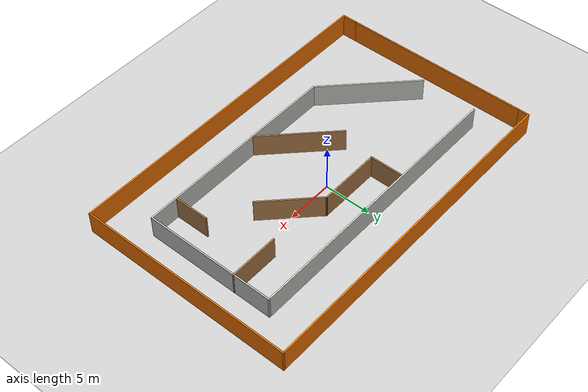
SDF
<sdf version="1.7">
 <world name="default">
  <light name="sun" type="directional">
   <pose>0 0 10 0 -0 0</pose>
   <diffuse>0.8 0.8 0.8 1</diffuse>
   <specular>0.2 0.2 0.2 1</specular>
   <attenuation>
    <range>1000</range>
    <constant>0.9</constant>
    <linear>0.01</linear>
    <quadratic>0.001</quadratic>
   </attenuation>
   <direction>-0.5 0.1 -0.9</direction>
   <spot><inner_angle>0</inner_angle><outer_angle>0</outer_angle><falloff>0</falloff></spot>
  </light>
  <model name="ground_plane">
   <static>1</static>
   <link name="link">
    <collision name="collision">
     <geometry><plane><normal>0 0 1</normal><size>100 100</size></plane></geometry>
     <surface><friction><ode><mu>100</mu><mu2>50</mu2></ode></friction></surface>
    </collision>
    <visual name="visual">
     <cast_shadows>0</cast_shadows>
     <geometry><plane><normal>0 0 1</normal><size>100 100</size></plane></geometry>
     <material>
      <script><uri>file://media/materials/scripts/gazebo.material</uri><name>Gazebo/Grey</name></script>
     </material>
    </visual>
   </link>
  </model>
  <gravity>0 0 -9.8</gravity>
  <magnetic_field>6e-06 2.3e-05 -4.2e-05</magnetic_field>
  <atmosphere type="adiabatic"/>
  <physics type="ode">
   <max_step_size>0.001</max_step_size>
   <real_time_factor>1</real_time_factor>
   <real_time_update_rate>1000</real_time_update_rate>
  </physics>
  <scene><ambient>0.4 0.4 0.4 1</ambient><background>0.7 0.7 0.7 1</background><shadows>1</shadows></scene>
  <audio><device>default</device></audio>
  <spherical_coordinates>
   <surface_model>EARTH_WGS84</surface_model>
   <latitude_deg>0</latitude_deg>
   <longitude_deg>0</longitude_deg>
   <elevation>0</elevation>
   <heading_deg>0</heading_deg>
  </spherical_coordinates>
  <model name="mbot_maze">
   <pose>-0.081357 -1.20883 0 0 -0 0</pose>
   <link name="Wall_1">
    <collision name="Wall_1_Collision">
     <geometry><box><size>22.25 0.15 2.5</size></box></geometry>
     <pose>0 0 1.25 0 -0 0</pose>
    </collision>
    <visual name="Wall_1_Visual">
     <pose>0 0 1.25 0 -0 0</pose>
     <geometry><box><size>22.25 0.15 2.5</size></box></geometry>
     <material>
      <script><uri>file://media/materials/scripts/gazebo.material</uri><name>Gazebo/CeilingTiled</name></script>
      <ambient>1 1 1 1</ambient>
     </material>
     <meta><layer>0</layer></meta>
    </visual>
    <pose>3.53639 -6.85154 0 0 -0 0</pose>
   </link>
   <link name="Wall_10">
    <collision name="Wall_10_Collision">
     <geometry><box><size>5.25 0.15 2.5</size></box></geometry>
     <pose>0 0 1.25 0 -0 0</pose>
    </collision>
    <visual name="Wall_10_Visual">
     <pose>0 0 1.25 0 -0 0</pose>
     <geometry><box><size>5.25 0.15 2.5</size></box></geometry>
     <material>
      <script><uri>file://media/materials/scripts/gazebo.material</uri><name>Gazebo/Wood</name></script>
      <ambient>1 1 1 1</ambient>
     </material>
     <meta><layer>0</layer></meta>
    </visual>
    <pose>12.0502 2.99293 0 0 -0 0</pose>
   </link>
   <link name="Wall_12">
    <collision name="Wall_12_Collision">
     <geometry><box><size>9 0.15 2.5</size></box></geometry>
     <pose>0 0 1.25 0 -0 0</pose>
    </collision>
    <visual name="Wall_12_Visual">
     <pose>0 0 1.25 0 -0 0</pose>
     <geometry><box><size>9 0.15 2.5</size></box></geometry>
     <material>
      <script><uri>file://media/materials/scripts/gazebo.material</uri><name>Gazebo/Wood</name></script>
      <ambient>1 1 1 1</ambient>
     </material>
     <meta><layer>0</layer></meta>
    </visual>
    <pose>-1.68408 -3.73221 0 0 -0 2.35619</pose>
   </link>
   <link name="Wall_14">
    <collision name="Wall_14_Collision">
     <geometry><box><size>3.75 0.15 2.5</size></box></geometry>
     <pose>0 0 1.25 0 -0 0</pose>
    </collision>
    <visual name="Wall_14_Visual">
     <pose>0 0 1.25 0 -0 0</pose>
     <geometry><box><size>3.75 0.15 2.5</size></box></geometry>
     <material>
      <script><uri>file://media/materials/scripts/gazebo.material</uri><name>Gazebo/Wood</name></script>
      <ambient>1 1 1 1</ambient>
     </material>
     <meta><layer>0</layer></meta>
    </visual>
    <pose>11.5568 -4.96948 0 0 -0 -1.5708</pose>
   </link>
   <link name="Wall_16">
    <collision name="Wall_16_Collision">
     <geometry><box><size>11 0.15 2.5</size></box></geometry>
     <pose>0 0 1.25 0 -0 0</pose>
    </collision>
    <visual name="Wall_16_Visual">
     <pose>0 0 1.25 0 -0 0</pose>
     <geometry><box><size>11 0.15 2.5</size></box></geometry>
     <material>
      <script><uri>file://media/materials/scripts/gazebo.material</uri><name>Gazebo/CeilingTiled</name></script>
      <ambient>1 1 1 1</ambient>
     </material>
     <meta><layer>0</layer></meta>
    </visual>
    <pose>-11.3497 -3.01548 0 0 -0 2.35619</pose>
   </link>
   <link name="Wall_18">
    <collision name="Wall_18_Collision">
     <geometry><box><size>20.25 0.15 2.5</size></box></geometry>
     <pose>0 0 1.25 0 -0 0</pose>
    </collision>
    <visual name="Wall_18_Visual">
     <pose>0 0 1.25 0 -0 0</pose>
     <geometry><box><size>20.25 0.15 2.5</size></box></geometry>
     <material>
      <script><uri>file://media/materials/scripts/gazebo.material</uri><name>Gazebo/Grey</name></script>
      <ambient>0.996078 0.47451 0.0196078 1</ambient>
     </material>
     <meta><layer>0</layer></meta>
    </visual>
    <pose>-17.8 0.225 0 0 -0 -1.5708</pose>
   </link>
   <link name="Wall_19">
    <collision name="Wall_19_Collision">
     <geometry><box><size>1.75 0.15 2.5</size></box></geometry>
     <pose>0 0 1.25 0 -0 0</pose>
    </collision>
    <visual name="Wall_19_Visual">
     <pose>0 0 1.25 0 -0 0</pose>
     <geometry><box><size>1.75 0.15 2.5</size></box></geometry>
     <material>
      <script><uri>file://media/materials/scripts/gazebo.material</uri><name>Gazebo/Grey</name></script>
      <ambient>0.996078 0.47451 0.0196078 1</ambient>
     </material>
     <meta><layer>0</layer></meta>
    </visual>
    <pose>-17.8 -10.625 0 0 -0 -1.5708</pose>
   </link>
   <link name="Wall_2">
    <collision name="Wall_2_Collision">
     <geometry><box><size>14 0.15 2.5</size></box></geometry>
     <pose>0 0 1.25 0 -0 0</pose>
    </collision>
    <visual name="Wall_2_Visual">
     <pose>0 0 1.25 0 -0 0</pose>
     <geometry><box><size>14 0.15 2.5</size></box></geometry>
     <material>
      <script><uri>file://media/materials/scripts/gazebo.material</uri><name>Gazebo/CeilingTiled</name></script>
      <ambient>1 1 1 1</ambient>
     </material>
     <meta><layer>0</layer></meta>
    </visual>
    <pose>14.5864 0.073464 0 0 -0 1.5708</pose>
   </link>
   <link name="Wall_20">
    <collision name="Wall_20_Collision">
     <geometry><box><size>35.75 0.15 2.5</size></box></geometry>
     <pose>0 0 1.25 0 -0 0</pose>
    </collision>
    <visual name="Wall_20_Visual">
     <pose>0 0 1.25 0 -0 0</pose>
     <geometry><box><size>35.75 0.15 2.5</size></box></geometry>
     <material>
      <script><uri>file://media/materials/scripts/gazebo.material</uri><name>Gazebo/Grey</name></script>
      <ambient>0.996078 0.47451 0.0196078 1</ambient>
     </material>
     <meta><layer>0</layer></meta>
    </visual>
    <pose>-0 -11.425 0 0 -0 0</pose>
   </link>
   <link name="Wall_21">
    <collision name="Wall_21_Collision">
     <geometry><box><size>23 0.15 2.5</size></box></geometry>
     <pose>0 0 1.25 0 -0 0</pose>
    </collision>
    <visual name="Wall_21_Visual">
     <pose>0 0 1.25 0 -0 0</pose>
     <geometry><box><size>23 0.15 2.5</size></box></geometry>
     <material>
      <script><uri>file://media/materials/scripts/gazebo.material</uri><name>Gazebo/Grey</name></script>
      <ambient>0.996078 0.47451 0.0196078 1</ambient>
     </material>
     <meta><layer>0</layer></meta>
    </visual>
    <pose>17.8 0 0 0 -0 1.5708</pose>
   </link>
   <link name="Wall_22">
    <collision name="Wall_22_Collision">
     <geometry><box><size>35.75 0.15 2.5</size></box></geometry>
     <pose>0 0 1.25 0 -0 0</pose>
    </collision>
    <visual name="Wall_22_Visual">
     <pose>0 0 1.25 0 -0 0</pose>
     <geometry><box><size>35.75 0.15 2.5</size></box></geometry>
     <material>
      <script><uri>file://media/materials/scripts/gazebo.material</uri><name>Gazebo/Grey</name></script>
      <ambient>0.996078 0.47451 0.0196078 1</ambient>
     </material>
     <meta><layer>0</layer></meta>
    </visual>
    <pose>-0 11.425 0 0 -0 3.14159</pose>
   </link>
   <link name="Wall_23">
    <collision name="Wall_23_Collision">
     <geometry><box><size>1.3 0.15 2.5</size></box></geometry>
     <pose>0 0 1.25 0 -0 0</pose>
    </collision>
    <visual name="Wall_23_Visual">
     <pose>0 0 1.25 0 -0 0</pose>
     <geometry><box><size>1.3 0.15 2.5</size></box></geometry>
     <material>
      <script><uri>file://media/materials/scripts/gazebo.material</uri><name>Gazebo/Grey</name></script>
      <ambient>0.996078 0.47451 0.0196078 1</ambient>
     </material>
     <meta><layer>0</layer></meta>
    </visual>
    <pose>-17.8 10.85 0 0 -0 -1.5708</pose>
   </link>
   <link name="Wall_3">
    <collision name="Wall_3_Collision">
     <geometry><box><size>29.75 0.15 2.5</size></box></geometry>
     <pose>0 0 1.25 0 -0 0</pose>
    </collision>
    <visual name="Wall_3_Visual">
     <pose>0 0 1.25 0 -0 0</pose>
     <geometry><box><size>29.75 0.15 2.5</size></box></geometry>
     <material>
      <script><uri>file://media/materials/scripts/gazebo.material</uri><name>Gazebo/CeilingTiled</name></script>
      <ambient>1 1 1 1</ambient>
     </material>
     <meta><layer>0</layer></meta>
    </visual>
    <pose>-0.213607 6.99846 0 0 -0 3.14159</pose>
   </link>
   <link name="Wall_6">
    <collision name="Wall_6_Collision">
     <geometry><box><size>3.58541 0.15 2.5</size></box></geometry>
     <pose>0 0 1.25 0 -0 0</pose>
    </collision>
    <visual name="Wall_6_Visual">
     <pose>0 0 1.25 0 -0 0</pose>
     <geometry><box><size>3.58541 0.15 2.5</size></box></geometry>
     <material>
      <script><uri>file://media/materials/scripts/gazebo.material</uri><name>Gazebo/Wood</name></script>
      <ambient>1 1 1 1</ambient>
     </material>
     <meta><layer>0</layer></meta>
    </visual>
    <pose>-3.71225 5.1418 0 0 -0 -1.5708</pose>
   </link>
   <link name="Wall_7">
    <collision name="Wall_7_Collision">
     <geometry><box><size>6.61208 0.15 2.5</size></box></geometry>
     <pose>0 0 1.25 0 -0 0</pose>
    </collision>
    <visual name="Wall_7_Visual">
     <pose>0 0 1.25 0 -0 0</pose>
     <geometry><box><size>6.61208 0.15 2.5</size></box></geometry>
     <material>
      <script><uri>file://media/materials/scripts/gazebo.material</uri><name>Gazebo/Wood</name></script>
      <ambient>1 1 1 1</ambient>
     </material>
     <meta><layer>0</layer></meta>
    </visual>
    <pose>-0.419687 3.42437 0 0 -0 0</pose>
   </link>
   <link name="Wall_8">
    <collision name="Wall_8_Collision">
     <geometry><box><size>6.75 0.15 2.5</size></box></geometry>
     <pose>0 0 1.25 0 -0 0</pose>
    </collision>
    <visual name="Wall_8_Visual">
     <pose>0 0 1.25 0 -0 0</pose>
     <geometry><box><size>6.75 0.15 2.5</size></box></geometry>
     <material>
      <script><uri>file://media/materials/scripts/gazebo.material</uri><name>Gazebo/Wood</name></script>
      <ambient>1 1 1 1</ambient>
     </material>
     <meta><layer>0</layer></meta>
    </visual>
    <pose>5.08328 1.09091 0 0 -0 -0.785398</pose>
   </link>
   <static>1</static>
  </model>
 </world>
</sdf>
